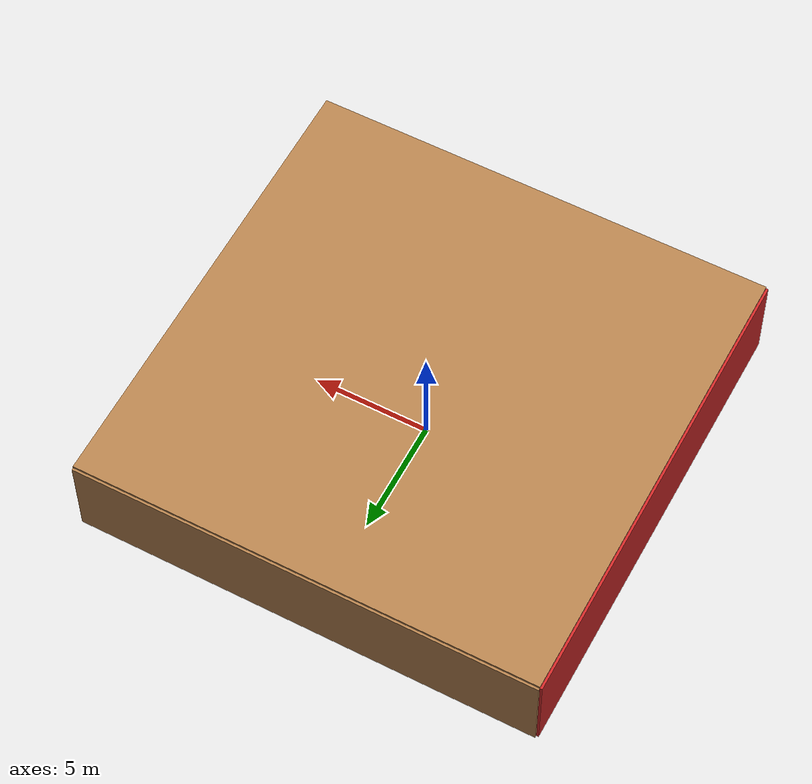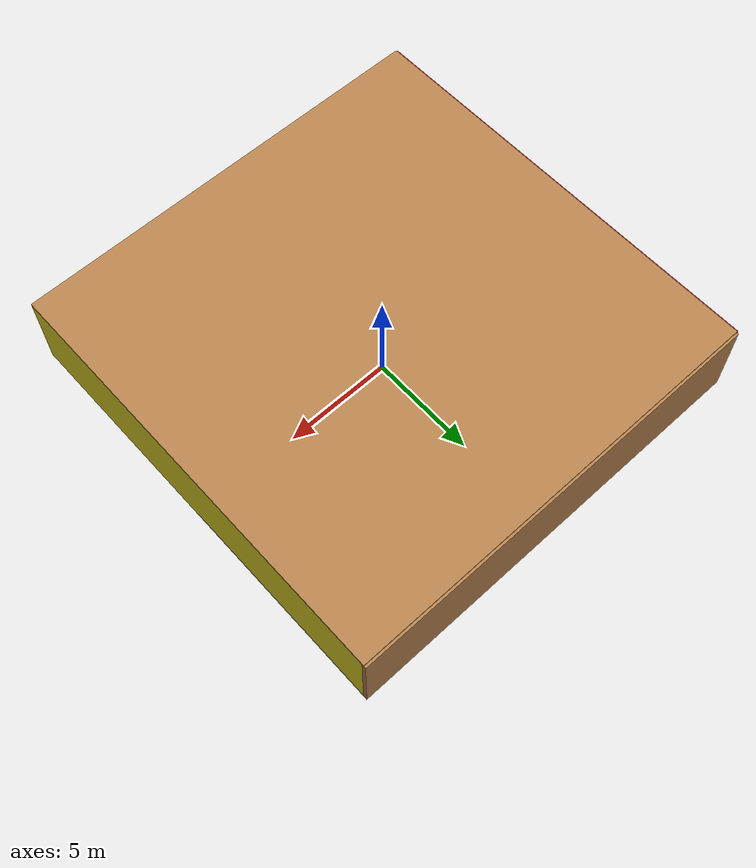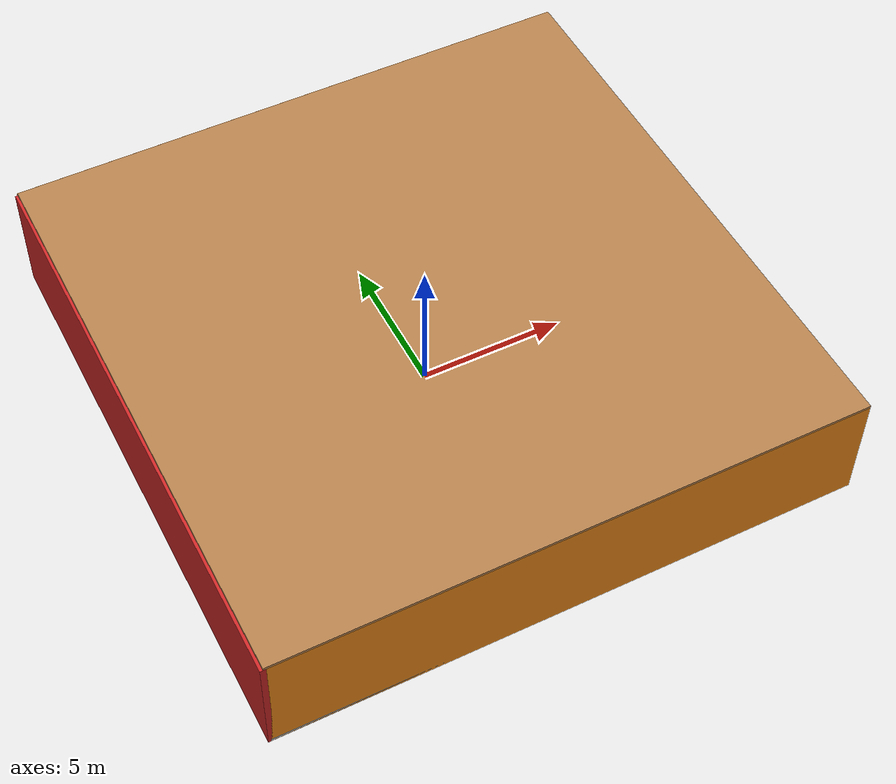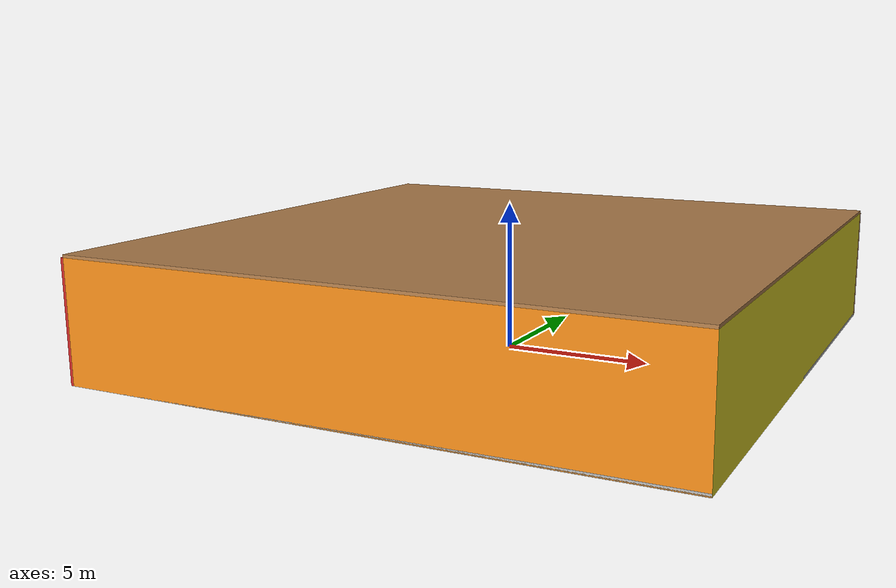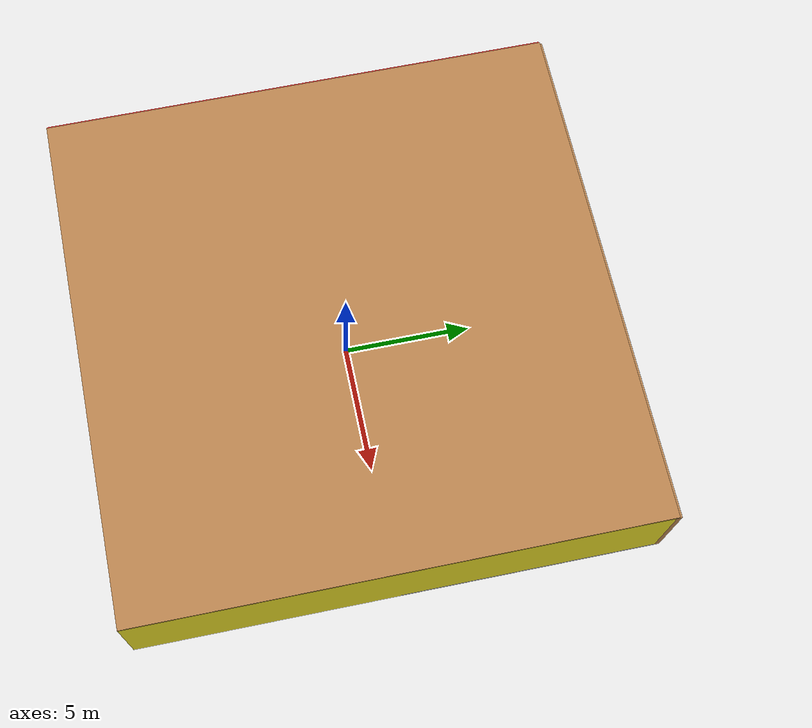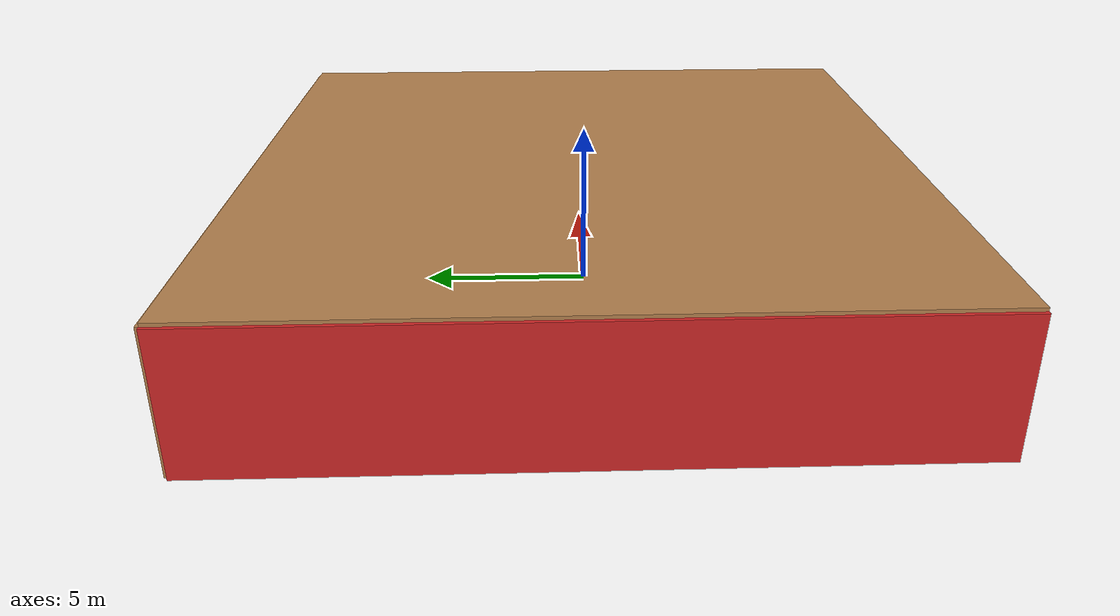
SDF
<sdf version="1.4">
 <world name="default">
  <physics type="ode">
   <max_step_size>0.001</max_step_size>
   <real_time_factor>1</real_time_factor>
   <real_time_update_rate>1000</real_time_update_rate>
   <gravity>0 0 -9.8</gravity>
  </physics>
  <scene><ambient>0.4 0.4 0.4 1</ambient><background>0.7 0.7 0.7 1</background><shadows>1</shadows></scene>
  <model name="Surrounding">
   <static>1</static>
   <link name="Ceiling">
    <collision name="Ceiling_Collision"><geometry><box><size>20 20 0.1</size></box></geometry></collision>
    <visual name="Ceiling_Visual">
     <geometry><box><size>20 20 0.1</size></box></geometry>
     <material>
      <script><uri>file://media/materials/scripts/gazebo.material</uri><name>Gazebo/Wood</name></script>
     </material>
    </visual>
    <pose>0 0 4.05 0 0 0</pose>
   </link>
   <link name="Wall_South">
    <collision name="Wall_South_Collision">
     <geometry><box><size>20 0 4</size></box></geometry>
     <pose>0 0 2 0 -0 0</pose>
    </collision>
    <visual name="Wall_South_Visual">
     <pose>0 0 2 0 -0 0</pose>
     <geometry><box><size>20 0 4</size></box></geometry>
     <material>
      <script><uri>file://media/materials/scripts/gazebo.material</uri><name>Gazebo/Orange</name></script>
     </material>
    </visual>
    <velocity_decay><linear>0</linear><angular>0</angular></velocity_decay>
    <pose>0 -10 0 0 -0 0</pose>
   </link>
   <link name="Wall_East">
    <collision name="Wall_21_Collision">
     <geometry><box><size>20 0 4</size></box></geometry>
     <pose>0 0 2 0 -0 0</pose>
    </collision>
    <visual name="Wall_21_Visual">
     <pose>0 0 2 0 -0 0</pose>
     <geometry><box><size>20 0 4</size></box></geometry>
     <material>
      <script><uri>file://media/materials/scripts/gazebo.material</uri><name>Gazebo/YellowGlow</name></script>
     </material>
    </visual>
    <velocity_decay><linear>0</linear><angular>0</angular></velocity_decay>
    <pose>10 0 0 0 -0 1.5708</pose>
   </link>
   <link name="Wall_North">
    <collision name="Wall_22_Collision">
     <geometry><box><size>20 0.2 4</size></box></geometry>
     <pose>0 0 2 0 -0 0</pose>
    </collision>
    <visual name="Wall_22_Visual">
     <pose>0 0 2 0 -0 0</pose>
     <geometry><box><size>20 0.2 4</size></box></geometry>
     <material>
      <script><uri>file://media/materials/scripts/gazebo.material</uri><name>Gazebo/WoodPallet</name></script>
     </material>
    </visual>
    <velocity_decay><linear>0</linear><angular>0</angular></velocity_decay>
    <pose>0 10 0 0 -0 0</pose>
   </link>
   <link name="Wall_West">
    <collision name="Wall_23_Collision">
     <geometry><box><size>20 0.2 4</size></box></geometry>
     <pose>0 0 2 0 -0 0</pose>
    </collision>
    <visual name="Wall_23_Visual">
     <pose>0 0 2 0 -0 0</pose>
     <geometry><box><size>20 0.2 4</size></box></geometry>
     <material>
      <script><uri>file://media/materials/scripts/gazebo.material</uri><name>Gazebo/Red</name></script>
     </material>
    </visual>
    <velocity_decay><linear>0</linear><angular>0</angular></velocity_decay>
    <pose>-10 0 0 0 0 -1.5708</pose>
   </link>
   <link name="Ground_link">
    <collision name="collision">
     <pose>0 0 .05 0 -0 0</pose>
     <geometry><box><size>20 20 0.1</size></box></geometry>
    </collision>
    <visual name="visual">
     <pose>0 0 .05 0 -0 0</pose>
     <geometry><box><size>20 20 0.1</size></box></geometry>
     <material>
      <script><uri>file://media/materials/scripts/gazebo.material</uri><name>Gazebo/JointAnchor</name></script>
     </material>
    </visual>
   </link>
   <static>1</static>
  </model>
  <spherical_coordinates>
   <surface_model>EARTH_WGS84</surface_model>
   <latitude_deg>0</latitude_deg>
   <longitude_deg>0</longitude_deg>
   <elevation>0</elevation>
   <heading_deg>0</heading_deg>
  </spherical_coordinates>
  <light name="lightball_0" type="diffuse">
   <diffuse>0.8 0.8 0.8 1</diffuse>
   <specular>0.2 0.2 0.2 1</specular>
   <attenuation>
    <range>100</range>
    <constant>0.7</constant>
    <linear>0.01</linear>
    <quadratic>0.001</quadratic>
   </attenuation>
   <direction>-0.5 0.1 -0.9</direction>
   <pose>-5.4207194706 5.97279321023 2.73779381249 0 0 0</pose>
  </light>
  <light name="lightball_1" type="diffuse">
   <diffuse>0.8 0.8 0.8 1</diffuse>
   <specular>0.2 0.2 0.2 1</specular>
   <attenuation>
    <range>100</range>
    <constant>0.7</constant>
    <linear>0.01</linear>
    <quadratic>0.001</quadratic>
   </attenuation>
   <direction>-0.5 0.1 -0.9</direction>
   <pose>-4.52360938278 7.02507951979 2.74986062133 0 0 0</pose>
  </light>
  <include>
   <uri>model://robocup_3Dsim_goal</uri>
   <pose>-7.50226934171 -4.74861083974 0 0 0 1.93805410271</pose>
  </include>
  <include>
   <uri>model://robocup_3Dsim_goal</uri>
   <pose>-4.40074010302 -6.7305953207 0 0 0 2.11927110253</pose>
  </include>
  <include>
   <uri>model://robocup_3Dsim_goal</uri>
   <pose>-3.9120690531 -0.932309536425 0 0 0 2.02094272784</pose>
  </include>
  <include>
   <uri>model://textured_shapes</uri>
   <pose>-1.38357878406 -4.34487807385 0 0 0 1.51245130298</pose>
  </include>
 </world>
</sdf>

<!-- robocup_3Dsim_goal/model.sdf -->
<sdf version="1.5">
  <model name="robocup_3d_goal">
    <static>true</static>
    <link name="left_post">
      <pose>0 1.05 0.45 0 0 0</pose>
      <collision name="collision">
        <geometry>
          <cylinder>
            <radius>0.05</radius>
            <length>0.9</length>
          </cylinder>
        </geometry>
      </collision>
      <visual name="visual">
        <geometry>
          <cylinder>
            <radius>0.05</radius>
            <length>0.9</length>
          </cylinder>
        </geometry>
        <material>
          <script>
            <uri>file://media/materials/scripts/gazebo.material</uri>
            <name>Gazebo/ZincYellow</name>
          </script>
        </material>
      </visual>
    </link>
    <link name="left_support_horiz_lower">
      <pose>0.30 1.05 0.01 0 0 0</pose>
      <collision name="collision">
        <geometry>
          <box>
            <size>0.50 0.02 0.02</size>
          </box>
        </geometry>
      </collision>
      <visual name="visual">
        <geometry>
          <box>
            <size>0.50 0.02 0.02</size>
          </box>
        </geometry>
        <material>
          <script>
            <uri>file://media/materials/scripts/gazebo.material</uri>
            <name>Gazebo/White</name>
          </script>
        </material>
      </visual>
    </link>
    <link name="left_support_horiz_upper">
      <pose>0.30 1.05 0.79 0 0 0</pose>
      <collision name="collision">
        <geometry>
          <box>
            <size>0.50 0.02 0.02</size>
          </box>
        </geometry>
      </collision>
      <visual name="visual">
        <geometry>
          <box>
            <size>0.50 0.02 0.02</size>
          </box>
        </geometry>
        <material>
          <script>
            <uri>file://media/materials/scripts/gazebo.material</uri>
            <name>Gazebo/White</name>
          </script>
        </material>
      </visual>
    </link>
    <link name="left_support_vertical">
      <pose>0.56 1.05 0.4 0 1.5708 0</pose>
      <collision name="collision">
        <geometry>
          <box>
            <size>0.80 0.02 0.02</size>
          </box>
        </geometry>
      </collision>
      <visual name="visual">
        <geometry>
          <box>
            <size>0.80 0.02 0.02</size>
          </box>
        </geometry>
        <material>
          <script>
            <uri>file://media/materials/scripts/gazebo.material</uri>
            <name>Gazebo/White</name>
          </script>
        </material>
      </visual>
    </link>
    <link name="right_support_horiz_lower">
      <pose>0.30 -1.05 0.01 0 0 0</pose>
      <collision name="collision">
        <geometry>
          <box>
            <size>0.50 0.02 0.02</size>
          </box>
        </geometry>
      </collision>
      <visual name="visual">
        <geometry>
          <box>
            <size>0.50 0.02 0.02</size>
          </box>
        </geometry>
        <material>
          <script>
            <uri>file://media/materials/scripts/gazebo.material</uri>
            <name>Gazebo/White</name>
          </script>
        </material>
      </visual>
    </link>
    <link name="right_support_horiz_upper">
      <pose>0.30 -1.05 0.79 0 0 0</pose>
      <collision name="collision">
        <geometry>
          <box>
            <size>0.50 0.02 0.02</size>
          </box>
        </geometry>
      </collision>
      <visual name="visual">
        <geometry>
          <box>
            <size>0.50 0.02 0.02</size>
          </box>
        </geometry>
        <material>
          <script>
            <uri>file://media/materials/scripts/gazebo.material</uri>
            <name>Gazebo/White</name>
          </script>
        </material>
      </visual>
    </link>
    <link name="right_support_vertical">
      <pose>0.56 -1.05 0.4 0 1.5708 0</pose>
      <collision name="collision">
        <geometry>
          <box>
            <size>0.80 0.02 0.02</size>
          </box>
        </geometry>
      </collision>
      <visual name="visual">
        <geometry>
          <box>
            <size>0.80 0.02 0.02</size>
          </box>
        </geometry>
        <material>
          <script>
            <uri>file://media/materials/scripts/gazebo.material</uri>
            <name>Gazebo/White</name>
          </script>
        </material>
      </visual>
    </link>
    <link name="center_support_horiz_lower">
      <pose>0.56 0 0.01 0 1.5708 0</pose>
      <collision name="collision">
        <geometry>
          <box>
            <size>0.02 2.08 0.02</size>
          </box>
        </geometry>
      </collision>
      <visual name="visual">
        <geometry>
          <box>
            <size>0.02 2.08 0.02</size>
          </box>
        </geometry>
        <material>
          <script>
            <uri>file://media/materials/scripts/gazebo.material</uri>
            <name>Gazebo/White</name>
          </script>
        </material>
      </visual>
    </link>
    <link name="center_support_horiz_upper">
      <pose>0.56 0 0.79 0 1.5708 0</pose>
      <collision name="collision">
        <geometry>
          <box>
            <size>0.02 2.08 0.02</size>
          </box>
        </geometry>
      </collision>
      <visual name="visual">
        <geometry>
          <box>
            <size>0.02 2.08 0.02</size>
          </box>
        </geometry>
        <material>
          <script>
            <uri>file://media/materials/scripts/gazebo.material</uri>
            <name>Gazebo/White</name>
          </script>
        </material>
      </visual>
    </link>
    <link name="right_post">
      <pose>0 -1.05 0.45 0 0 0</pose>
      <collision name="collision">
        <geometry>
          <cylinder>
            <radius>0.05</radius>
            <length>0.9</length>
          </cylinder>
        </geometry>
      </collision>
      <visual name="visual">
        <geometry>
          <cylinder>
            <radius>0.05</radius>
            <length>0.9</length>
          </cylinder>
        </geometry>
        <material>
          <script>
            <uri>file://media/materials/scripts/gazebo.material</uri>
            <name>Gazebo/ZincYellow</name>
          </script>
        </material>
      </visual>
    </link>
    <link name="crossbar">
      <pose>0 0 0.85 1.57 1.57 0</pose>
      <collision name="collision">
        <geometry>
          <cylinder>
            <radius>0.05</radius>
            <length>2.0</length>
          </cylinder>
        </geometry>
      </collision>
      <visual name="visual">
        <geometry>
          <cylinder>
            <radius>0.05</radius>
            <length>2.0</length>
          </cylinder>
        </geometry>
        <material>
          <script>
            <uri>file://media/materials/scripts/gazebo.material</uri>
            <name>Gazebo/ZincYellow</name>
          </script>
        </material>
      </visual>
    </link>
    <link name="center_net">
      <pose>0.56 0 0.40 0 0 0</pose>
      <collision name="collision">
        <geometry>
          <box>
            <size>0.01 2.1 0.80</size>
          </box>
        </geometry>
      </collision>
      <visual name="visual">
        <geometry>
          <box>
            <size>0.01 2.1 0.80</size>
          </box>
        </geometry>
        <material>
          <script>
            <uri>model://../model_source/models/robocup09_spl_field/materials/scripts/</uri>
            <uri>model://../model_source/models/robocup09_spl_field/materials/textures/</uri>
            <name>RoboCup/Net</name>
          </script>
        </material>
      </visual>
    </link>
    <link name="left_net">
      <pose>0.30 1.05 0.40 0 0 0</pose>
      <collision name="collision">
        <geometry>
          <box>
            <size>0.50 0.01 0.76</size>
          </box>
        </geometry>
      </collision>
      <visual name="visual">
        <geometry>
          <box>
            <size>0.50 0.01 0.76</size>
          </box>
        </geometry>
        <material>
          <script>
            <uri>model://../model_source/models/robocup09_spl_field/materials/scripts/</uri>
            <uri>model://../model_source/models/robocup09_spl_field/materials/textures/</uri>
            <name>RoboCup/Net</name>
          </script>
        </material>
      </visual>
    </link>
    <link name="right_net">
      <pose>0.30 -1.05 0.40 0 0 0</pose>
      <collision name="collision">
        <geometry>
          <box>
            <size>0.50 0.01 0.76</size>
          </box>
        </geometry>
      </collision>
      <visual name="visual">
        <geometry>
          <box>
            <size>0.50 0.01 0.76</size>
          </box>
        </geometry>
        <material>
          <script>
            <uri>model://../model_source/models/robocup09_spl_field/materials/scripts/</uri>
            <uri>model://../model_source/models/robocup09_spl_field/materials/textures/</uri>
            <name>RoboCup/Net</name>
          </script>
        </material>
      </visual>
    </link>
  </model>
</sdf>

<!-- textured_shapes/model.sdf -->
<sdf version="1.6">
  <model name="textured_shapes">
    <pose>0 0 0.5 0 0 0</pose>
    <link name="box">
      <pose>0 -1.5 0 0 0 0</pose>
      <collision name="collision">
        <geometry>
          <box>
            <size>1 1 1</size>
          </box>
        </geometry>
      </collision>
      <visual name="visual">
        <geometry>
          <box>
            <size>1 1 1</size>
          </box>
        </geometry>
        <material>
          <script>
            <uri>model://../model_source/models/textured_shapes/materials/scripts</uri>
            <uri>model://../model_source/models/textured_shapes/materials/textures</uri>
            <name>TexturedShape/Squares</name>
          </script>
        </material>
      </visual>
    </link>
    <link name="sphere">
      <collision name="collision">
        <geometry>
          <sphere>
            <radius>0.5</radius>
          </sphere>
        </geometry>
      </collision>
      <visual name="visual">
        <geometry>
          <sphere>
            <radius>0.5</radius>
          </sphere>
        </geometry>
        <material>
          <script>
            <uri>model://../model_source/models/textured_shapes/materials/scripts</uri>
            <uri>model://../model_source/models/textured_shapes/materials/textures</uri>
            <name>TexturedShape/Squares</name>
          </script>
        </material>
      </visual>
    </link>
    <link name="cylinder">
      <pose>0 1.5 0 0 0 0</pose>
      <collision name="collision">
        <geometry>
          <cylinder>
            <radius>0.5</radius>
            <length>1</length>
          </cylinder>
        </geometry>
      </collision>
      <visual name="visual">
        <geometry>
          <cylinder>
            <radius>0.5</radius>
            <length>1</length>
          </cylinder>
        </geometry>
        <material>
          <script>
            <uri>model://../model_source/models/textured_shapes/materials/scripts</uri>
            <uri>model://../model_source/models/textured_shapes/materials/textures</uri>
            <name>TexturedShape/Squares</name>
          </script>
        </material>
      </visual>
    </link>
  </model>
</sdf>
